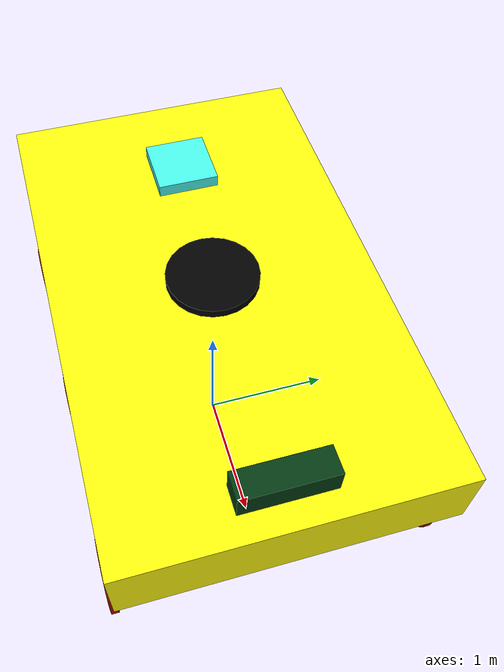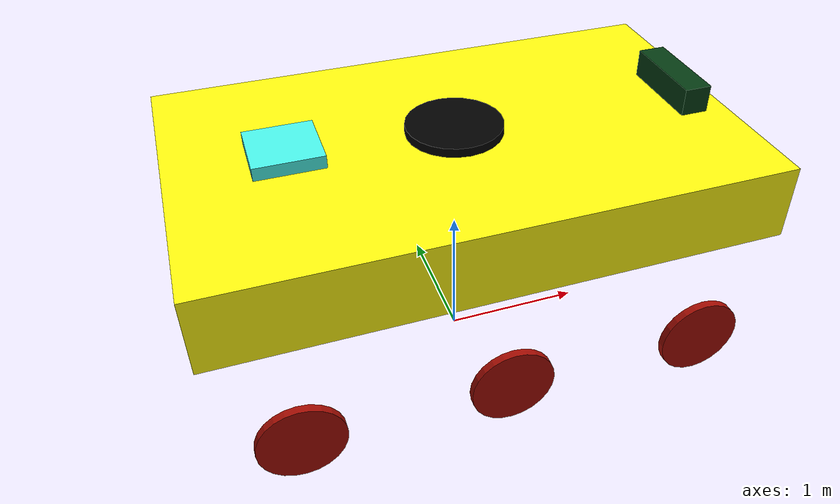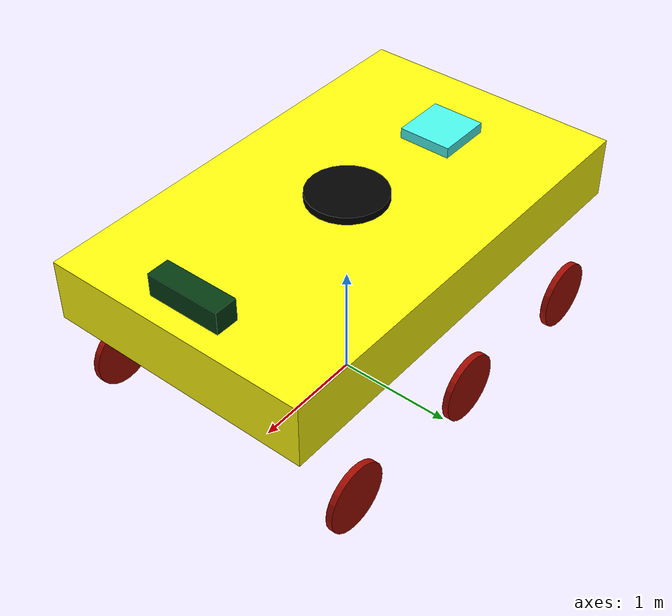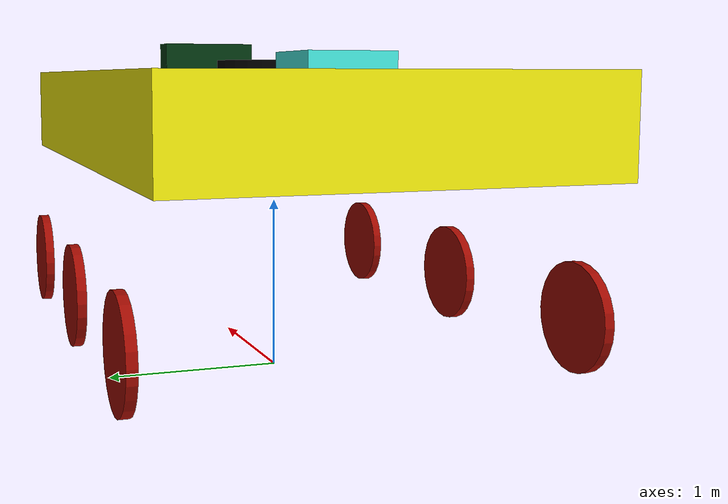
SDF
<?xml version="1.0"?>
  <sdf version="1.6">
  <model name="HMS_Perception" canonical_link='base_footprint'>
    <static>false</static>
    <pose>0 0 0 0 0 0</pose>
    <link name="base_footprint"></link>
    <link name="base_link">
      <pose relative_to='base_footprint'>0.000047751989472821776 0 1.5 0 0 0</pose>
      <visual name='base_link visual'>
        <pose>0 0 0 0 0 0</pose>
        <geometry>
          <box>
            <size>3.794 2.28 0.523</size>
          </box>
        </geometry>
        <material>
          <ambient>1 0.9734452903978066 0.05286064701616471 1</ambient>
          <diffuse>1 0.9734452903978066 0.05286064701616471 1</diffuse>
          <specular>0.1 0.1 0.1 1</specular>
          <emissive>0 0 0 1</emissive>
        </material>
      </visual>
      <collision name='base_link collision'>
        <pose>0 0 0 0 0 0</pose>
        <geometry>
          <box>
            <size>3.7939062066566853 2.2800234239081933 0.5232328098292442</size>
          </box>
        </geometry>
      </collision>
      <inertial>
        <mass>1</mass>
        <inertia>
          <ixx>0.16666666666666666</ixx>
          <ixy>0</ixy>
          <ixz>0</ixz>
          <iyy>0.16666666666666666</iyy>
          <iyz>0</iyz>
          <izz>0.16666666666666666</izz>
        </inertia>
      </inertial>
    </link>
    <joint name="base_footprint_to_base_link" type="fixed">
      <pose relative_to='base_link'>0 0 0 0 0 0 </pose>
      <parent>base_footprint</parent>
      <child>base_link</child>
    </joint>
    <link name="lidar">
      <pose relative_to='base_link'>0 0 0.2569669071788341 0 0 0</pose>
      <visual name='lidar visual'>
        <pose>0 0 0 0 0 0</pose>
        <geometry>
          <cylinder>
            <radius>0.333099402958804</radius>
            <length>0.13538975482266932</length>
          </cylinder>
        </geometry>
        <material>
          <ambient>0 0 0 1</ambient>
          <diffuse>0 0 0 1</diffuse>
          <specular>0.1 0.1 0.1 1</specular>
          <emissive>0 0 0 1</emissive>
        </material>
      </visual>
      <collision name='lidar collision'>
        <pose>0 0 0 0 0 0</pose>
        <geometry>
          <cylinder>
            <radius>0.333099402958804</radius>
            <length>0.13538975482266932</length>
          </cylinder>
        </geometry>
      </collision>
      <inertial>
        <mass>1</mass>
        <inertia>
          <ixx>0.3333333333333333</ixx>
          <ixy>0</ixy>
          <ixz>0</ixz>
          <iyy>0.5</iyy>
          <iyz>0</iyz>
          <izz>0.3333333333333333</izz>
        </inertia>
      </inertial>

          <sensor name="lidar_lidar" type="ray">
              <always_on>true</always_on>
              <visualize>true</visualize>
              <pose>-0.064 0 0.121 0 0 0</pose>
              <update_rate>5</update_rate>
              <ray>
                  <scan>
                      <horizontal>
                          <samples>360</samples>
                          <resolution>1</resolution>
                          <min_angle>0</min_angle>
                          <max_angle>6.28</max_angle>
                      </horizontal>
                  </scan>
                  <range>
                      <min>0.12</min>
                      <max>3.5</max>
                      <resolution>0.015</resolution>
                  </range>
                  <noise>
                      <type>gaussian</type>
                      <mean>0</mean>
                      <stddev>0.01</stddev>
                  </noise>
              </ray>
              <plugin name="laserscan_for_lidar" filename="libgazebo_ros_ray_sensor.so">
                  <ros>
                      <remapping>~/out:=lidar/scan</remapping>
                  </ros>
                  <output_type>sensor_msgs/LaserScan</output_type>
                  <frame_name>lidar</frame_name>
              </plugin>
          </sensor>
        </link>
    <joint name="base_link_to_lidar" type="fixed">
      <pose relative_to='lidar'>0 0 0 0 0 0 </pose>
      <parent>base_link</parent>
      <child>lidar</child>
    </joint>
    <link name="wheel_4">
      <pose relative_to='base_link'>-1.39 1.1909017501403918 -1 1.5707963267948963 0 0</pose>
      <visual name='wheel_4 visual'>
        <pose>0 0 0 0 0 0</pose>
        <geometry>
          <cylinder>
            <radius>0.2879384563584746</radius>
            <length>0.05383527298985801</length>
          </cylinder>
        </geometry>
        <material>
          <ambient>0.6375968739867731 0.04373502925049377 0.008023192982520563 1</ambient>
          <diffuse>0.6375968739867731 0.04373502925049377 0.008023192982520563 1</diffuse>
          <specular>0.1 0.1 0.1 1</specular>
          <emissive>0 0 0 1</emissive>
        </material>
      </visual>
      <collision name='wheel_4 collision'>
        <pose>0 0 0 0 0 0</pose>
        <geometry>
          <cylinder>
            <radius>0.2879384563584746</radius>
            <length>0.05383527298985801</length>
          </cylinder>
        </geometry>
      </collision>
      <inertial>
        <mass>1</mass>
        <inertia>
          <ixx>0.3333333333333333</ixx>
          <ixy>0</ixy>
          <ixz>0</ixz>
          <iyy>0.5</iyy>
          <iyz>0</iyz>
          <izz>0.3333333333333333</izz>
        </inertia>
      </inertial>
    </link>
    <joint name="base_link_to_wheel_4" type="continuous">
      <pose relative_to='wheel_4'>0 0 0 0 0 0 </pose>
      <parent>base_link</parent>
      <child>wheel_4</child>
      <axis>
          <xyz expressed_in='wheel_4'>0 0 1</xyz>
      </axis>
    </joint>
    <link name="camera">
      <pose relative_to='base_link'>1.6256258584357346 -0.02298885073006307 0.3695319117946291 0 0 0</pose>
      <visual name='camera visual'>
        <pose>0 0 0 0 0 0</pose>
        <geometry>
          <box>
            <size>0.1914947774659249 0.6346109922118176 0.19215263167384591</size>
          </box>
        </geometry>
        <material>
          <ambient>0.015996293361446288 0.22696587349938613 0.07036009568874305 1</ambient>
          <diffuse>0.015996293361446288 0.22696587349938613 0.07036009568874305 1</diffuse>
          <specular>0.1 0.1 0.1 1</specular>
          <emissive>0 0 0 1</emissive>
        </material>
      </visual>
      <collision name='camera collision'>
        <pose>0 0 0 0 0 0</pose>
        <geometry>
          <box>
            <size>0.1914947774659249 0.6346109922118176 0.19215263167384591</size>
          </box>
        </geometry>
      </collision>
      <inertial>
        <mass>1</mass>
        <inertia>
          <ixx>0.16666666666666666</ixx>
          <ixy>0</ixy>
          <ixz>0</ixz>
          <iyy>0.16666666666666666</iyy>
          <iyz>0</iyz>
          <izz>0.16666666666666666</izz>
        </inertia>
      </inertial>

              <sensor name="camera_front_camera" type="camera">
                  <always_on>true</always_on>
                  <visualize>true</visualize>
                  <update_rate>100</update_rate>
                  <camera name="camera_camera">
                      <horizontal_fov>1.3962634</horizontal_fov>
                      <image>
                          <width>800</width>
                          <height>600</height>
                          <format>R8G8B8</format>
                      </image>
                      <clip>
                          <near>0.1</near>
                          <far>100</far>
                      </clip>
                      <noise>
                          <type>gaussian</type>
                          <mean>0</mean>
                          <stddev>0.007</stddev>
                      </noise>
                  </camera>
                  <plugin name="camera_driver_for_camera" filename="libgazebo_ros_camera.so">
                      <ros>
                      </ros>
                  </plugin>
              </sensor>
            </link>
    <joint name="base_link_to_camera" type="fixed">
      <pose relative_to='camera'>0 0 0 0 0 0 </pose>
      <parent>base_link</parent>
      <child>camera</child>
    </joint>
    <link name="imu_sensor">
      <pose relative_to='base_link'>-1.1282184172017464 0.06064584319013511 0.17904669409114127 0 0 0</pose>
      <visual name='imu_sensor visual'>
        <pose>0 0 0 0 0 0</pose>
        <geometry>
          <box>
            <size>0.46603382719539876 0.45619487184483365 0.3454197767248413</size>
          </box>
        </geometry>
        <material>
          <ambient>0.2874408377161099 0.9559733532482866 0.913098651791473 1</ambient>
          <diffuse>0.2874408377161099 0.9559733532482866 0.913098651791473 1</diffuse>
          <specular>0.1 0.1 0.1 1</specular>
          <emissive>0 0 0 1</emissive>
        </material>
      </visual>
      <collision name='imu_sensor collision'>
        <pose>0 0 0 0 0 0</pose>
        <geometry>
          <box>
            <size>0.46603382719539876 0.45619487184483365 0.3454197767248413</size>
          </box>
        </geometry>
      </collision>
      <inertial>
        <mass>1</mass>
        <inertia>
          <ixx>0.16666666666666666</ixx>
          <ixy>0</ixy>
          <ixz>0</ixz>
          <iyy>0.16666666666666666</iyy>
          <iyz>0</iyz>
          <izz>0.16666666666666666</izz>
        </inertia>
      </inertial>

          <sensor name="imu" type="imu">
              <always_on>true</always_on>
              <update_rate>100</update_rate>
              <imu>
                  <angular_velocity>
                      <x>
                          <noise type="gaussian">
                              <mean>0</mean>
                              <stddev>0</stddev>
                          </noise>
                      </x>
                      <y>
                          <noise type="gaussian">
                              <mean>0</mean>
                              <stddev>0</stddev>
                          </noise>
                      </y>
                      <z>
                          <noise type="gaussian">
                              <mean>0</mean>
                              <stddev>0</stddev>
                          </noise>
                      </z>
                  </angular_velocity>
                  <linear_acceleration>
                      <x>
                          <noise type="gaussian">
                              <mean>0</mean>
                              <stddev>0</stddev>
                          </noise>
                      </x>
                      <y>
                          <noise type="gaussian">
                              <mean>0</mean>
                              <stddev>0</stddev>
                          </noise>
                      </y>
                      <z>
                          <noise type="gaussian">
                              <mean>0</mean>
                              <stddev>0</stddev>
                          </noise>
                      </z>
                  </linear_acceleration>
              </imu>
              <plugin name="imu_plugin_for_imu_sensor" filename="libgazebo_ros_imu_sensor.so">
                  <ros>
                      <remapping>~/out:=imu_sensor/imu</remapping>
                  </ros>
              </plugin>
          </sensor>
        </link>
    <joint name="base_link_to_imu_sensor" type="fixed">
      <pose relative_to='imu_sensor'>0 0 0 0 0 0 </pose>
      <parent>base_link</parent>
      <child>imu_sensor</child>
    </joint>
    <link name="wheel_5">
      <pose relative_to='base_link'>-1.39 -1.1736814480844906 -1 1.5707963267948963 0 0</pose>
      <visual name='wheel_5 visual'>
        <pose>0 0 0 0 0 0</pose>
        <geometry>
          <cylinder>
            <radius>0.2879384563584746</radius>
            <length>0.05383527298985801</length>
          </cylinder>
        </geometry>
        <material>
          <ambient>0.6375968739867731 0.04373502925049377 0.008023192982520563 1</ambient>
          <diffuse>0.6375968739867731 0.04373502925049377 0.008023192982520563 1</diffuse>
          <specular>0.1 0.1 0.1 1</specular>
          <emissive>0 0 0 1</emissive>
        </material>
      </visual>
      <collision name='wheel_5 collision'>
        <pose>0 0 0 0 0 0</pose>
        <geometry>
          <cylinder>
            <radius>0.2879384563584746</radius>
            <length>0.05383527298985801</length>
          </cylinder>
        </geometry>
      </collision>
      <inertial>
        <mass>1</mass>
        <inertia>
          <ixx>0.3333333333333333</ixx>
          <ixy>0</ixy>
          <ixz>0</ixz>
          <iyy>0.5</iyy>
          <iyz>0</iyz>
          <izz>0.3333333333333333</izz>
        </inertia>
      </inertial>
    </link>
    <joint name="base_link_to_wheel_5" type="continuous">
      <pose relative_to='wheel_5'>0 0 0 0 0 0 </pose>
      <parent>base_link</parent>
      <child>wheel_5</child>
      <axis>
          <xyz expressed_in='wheel_5'>0 0 1</xyz>
      </axis>
    </joint>
    <link name="wheel_3">
      <pose relative_to='base_link'>0.0005487795717144736 -1.1705640351243605 -1 1.5707963267948963 0 0</pose>
      <visual name='wheel_3 visual'>
        <pose>0 0 0 0 0 0</pose>
        <geometry>
          <cylinder>
            <radius>0.2879384563584746</radius>
            <length>0.05383527298985801</length>
          </cylinder>
        </geometry>
        <material>
          <ambient>0.6375968739867731 0.04373502925049377 0.008023192982520563 1</ambient>
          <diffuse>0.6375968739867731 0.04373502925049377 0.008023192982520563 1</diffuse>
          <specular>0.1 0.1 0.1 1</specular>
          <emissive>0 0 0 1</emissive>
        </material>
      </visual>
      <collision name='wheel_3 collision'>
        <pose>0 0 0 0 0 0</pose>
        <geometry>
          <cylinder>
            <radius>0.2879384563584746</radius>
            <length>0.05383527298985801</length>
          </cylinder>
        </geometry>
      </collision>
      <inertial>
        <mass>1</mass>
        <inertia>
          <ixx>0.3333333333333333</ixx>
          <ixy>0</ixy>
          <ixz>0</ixz>
          <iyy>0.5</iyy>
          <iyz>0</iyz>
          <izz>0.3333333333333333</izz>
        </inertia>
      </inertial>
    </link>
    <joint name="base_link_to_wheel_3" type="continuous">
      <pose relative_to='wheel_3'>0 0 0 0 0 0 </pose>
      <parent>base_link</parent>
      <child>wheel_3</child>
      <axis>
          <xyz expressed_in='wheel_3'>0 0 1</xyz>
      </axis>
    </joint>
    <link name="wheel_2">
      <pose relative_to='base_link'>0 1.1909017501403918 -1 1.5707963267948963 0 0</pose>
      <visual name='wheel_2 visual'>
        <pose>0 0 0 0 0 0</pose>
        <geometry>
          <cylinder>
            <radius>0.2879384563584746</radius>
            <length>0.05383527298985801</length>
          </cylinder>
        </geometry>
        <material>
          <ambient>0.6375968739867731 0.04373502925049377 0.008023192982520563 1</ambient>
          <diffuse>0.6375968739867731 0.04373502925049377 0.008023192982520563 1</diffuse>
          <specular>0.1 0.1 0.1 1</specular>
          <emissive>0 0 0 1</emissive>
        </material>
      </visual>
      <collision name='wheel_2 collision'>
        <pose>0 0 0 0 0 0</pose>
        <geometry>
          <cylinder>
            <radius>0.2879384563584746</radius>
            <length>0.05383527298985801</length>
          </cylinder>
        </geometry>
      </collision>
      <inertial>
        <mass>1</mass>
        <inertia>
          <ixx>0.3333333333333333</ixx>
          <ixy>0</ixy>
          <ixz>0</ixz>
          <iyy>0.5</iyy>
          <iyz>0</iyz>
          <izz>0.3333333333333333</izz>
        </inertia>
      </inertial>
    </link>
    <joint name="base_link_to_wheel_2" type="continuous">
      <pose relative_to='wheel_2'>0 0 0 0 0 0 </pose>
      <parent>base_link</parent>
      <child>wheel_2</child>
      <axis>
          <xyz expressed_in='wheel_2'>0 0 1</xyz>
      </axis>
    </joint>
    <link name="wheel_1">
      <pose relative_to='base_link'>1.39 -1.17 -1 1.5707963267948963 0 0</pose>
      <visual name='wheel_1 visual'>
        <pose>0 0 0 0 0 0</pose>
        <geometry>
          <cylinder>
            <radius>0.2879384563584746</radius>
            <length>0.05383527298985801</length>
          </cylinder>
        </geometry>
        <material>
          <ambient>0.6375968739867731 0.04373502925049377 0.008023192982520563 1</ambient>
          <diffuse>0.6375968739867731 0.04373502925049377 0.008023192982520563 1</diffuse>
          <specular>0.1 0.1 0.1 1</specular>
          <emissive>0 0 0 1</emissive>
        </material>
      </visual>
      <collision name='wheel_1 collision'>
        <pose>0 0 0 0 0 0</pose>
        <geometry>
          <cylinder>
            <radius>0.2879384563584746</radius>
            <length>0.05383527298985801</length>
          </cylinder>
        </geometry>
      </collision>
      <inertial>
        <mass>1</mass>
        <inertia>
          <ixx>0.3333333333333333</ixx>
          <ixy>0</ixy>
          <ixz>0</ixz>
          <iyy>0.5</iyy>
          <iyz>0</iyz>
          <izz>0.3333333333333333</izz>
        </inertia>
      </inertial>
    </link>
    <joint name="base_link_to_wheel_1" type="continuous">
      <pose relative_to='wheel_1'>0 0 0 0 0 0 </pose>
      <parent>base_link</parent>
      <child>wheel_1</child>
      <axis>
          <xyz expressed_in='wheel_1'>0 0 1</xyz>
      </axis>
    </joint>
    <link name="wheel_0">
      <pose relative_to='base_link'>1.39 1.1909017501403918 -1 1.5707963267948963 0 0</pose>
      <visual name='wheel_0 visual'>
        <pose>0 0 0 0 0 0</pose>
        <geometry>
          <cylinder>
            <radius>0.2879384563584746</radius>
            <length>0.05383527298985801</length>
          </cylinder>
        </geometry>
        <material>
          <ambient>0.6375968739867731 0.04373502925049377 0.008023192982520563 1</ambient>
          <diffuse>0.6375968739867731 0.04373502925049377 0.008023192982520563 1</diffuse>
          <specular>0.1 0.1 0.1 1</specular>
          <emissive>0 0 0 1</emissive>
        </material>
      </visual>
      <collision name='wheel_0 collision'>
        <pose>0 0 0 0 0 0</pose>
        <geometry>
          <cylinder>
            <radius>0.2879384563584746</radius>
            <length>0.05383527298985801</length>
          </cylinder>
        </geometry>
      </collision>
      <inertial>
        <mass>1</mass>
        <inertia>
          <ixx>0.3333333333333333</ixx>
          <ixy>0</ixy>
          <ixz>0</ixz>
          <iyy>0.5</iyy>
          <iyz>0</iyz>
          <izz>0.3333333333333333</izz>
        </inertia>
      </inertial>
    </link>
    <joint name="base_link_to_wheel_0" type="continuous">
      <pose relative_to='wheel_0'>0 0 0 0 0 0 </pose>
      <parent>base_link</parent>
      <child>wheel_0</child>
      <axis>
          <xyz expressed_in='wheel_0'>0 0 1</xyz>
      </axis>
    </joint>
      <plugin
          filename="gz-sim-joint-state-publisher-system"
          name="gz::sim::systems::JointStatePublisher">
      </plugin>
  </model>
</sdf>
